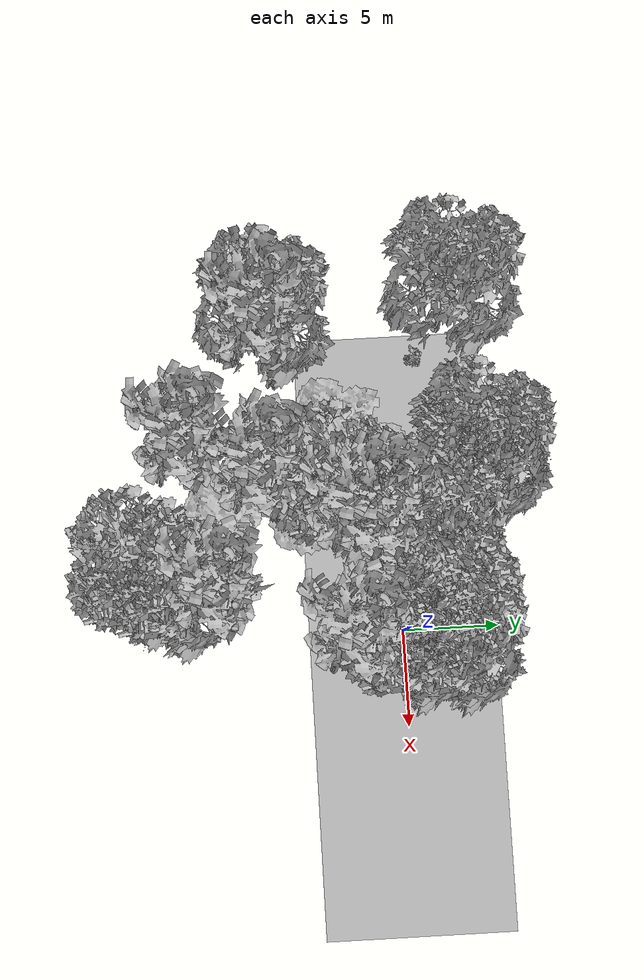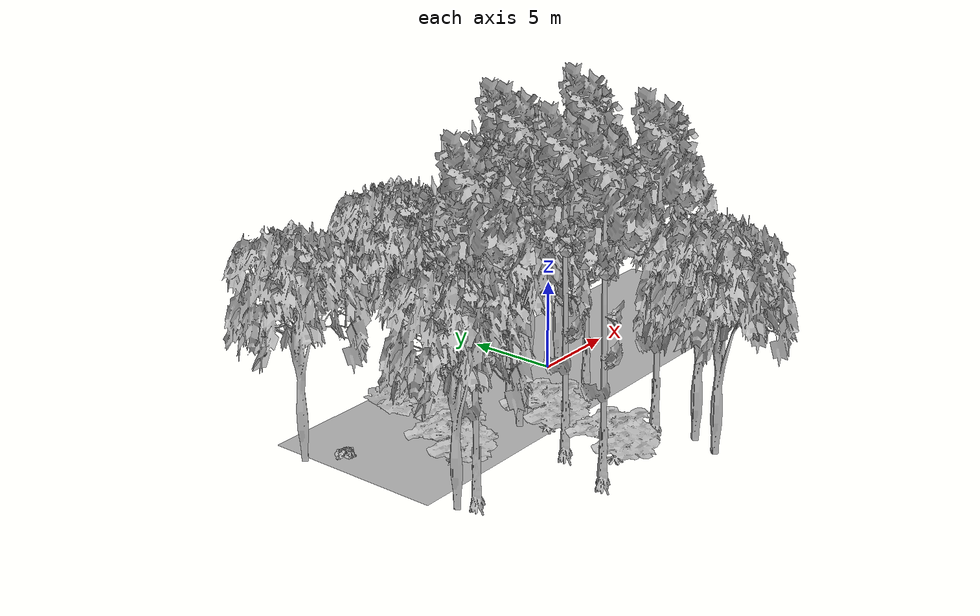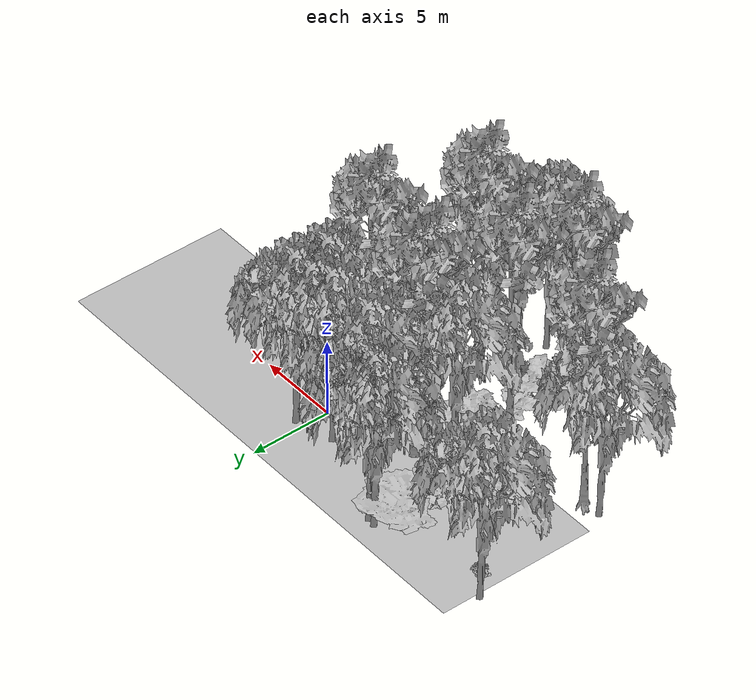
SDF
<sdf version="1.7">
 <world name="default">
  <model name="ground_plane">
   <static>1</static>
   <link name="link">
    <collision name="collision">
     <pose>-50 0 0 0 -0 0</pose>
     <geometry><plane><normal>0 0 1</normal><size>100 100</size></plane></geometry>
     <surface><contact><ode><min_depth>0.01</min_depth><max_vel>0</max_vel></ode></contact></surface>
    </collision>
    <visual name="grass">
     <cast_shadows>0</cast_shadows>
     <geometry>
      <mesh>
       <scale>0.5814285714285714 0.18142857142857144 0.1</scale>
       <uri>file://grass_plane/meshes/grass_plane.dae</uri>
      </mesh>
     </geometry>
    </visual>
   </link>
  </model>
  <model name="Tree 1">
   <static>1</static>
   <pose>-16.062787158504072 2.690668989017393 0 1.57079 -0 0</pose>
   <link name="link">
    <collision name="collision">
     <geometry><mesh><scale>3.5 5 3.5</scale><uri>model://tree_2/meshes/tree_2.obj</uri></mesh></geometry>
    </collision>
    <visual name="visual">
     <geometry><mesh><scale>3.5 5 3.5</scale><uri>model://tree_2/meshes/tree_2.obj</uri></mesh></geometry>
    </visual>
   </link>
  </model>
  <model name="Tree 8">
   <static>1</static>
   <pose>-0.33528790532663777 -2.7939643381200234 0 1.57079 -0 0</pose>
   <link name="link">
    <collision name="collision">
     <geometry><mesh><scale>3.5 5 3.5</scale><uri>model://tree_9/meshes/tree_9.obj</uri></mesh></geometry>
    </collision>
    <visual name="visual">
     <geometry><mesh><scale>3.5 5 3.5</scale><uri>model://tree_9/meshes/tree_9.obj</uri></mesh></geometry>
    </visual>
   </link>
  </model>
  <model name="Tree 14">
   <static>1</static>
   <pose>-2.6202465484503534 -11.016423006931841 0 1.57079 -0 0</pose>
   <link name="link">
    <collision name="collision">
     <geometry><mesh><scale>3.5 5 3.5</scale><uri>model://tree_2/meshes/tree_2.obj</uri></mesh></geometry>
    </collision>
    <visual name="visual">
     <geometry><mesh><scale>3.5 5 3.5</scale><uri>model://tree_2/meshes/tree_2.obj</uri></mesh></geometry>
    </visual>
   </link>
  </model>
  <model name="Tree 16">
   <static>1</static>
   <pose>-8.613029995133267 -9.647444346793051 0 1.57079 -0 0</pose>
   <link name="link">
    <collision name="collision">
     <geometry><mesh><scale>3.5 5 3.5</scale><uri>model://tree_9/meshes/tree_9.obj</uri></mesh></geometry>
    </collision>
    <visual name="visual">
     <geometry><mesh><scale>3.5 5 3.5</scale><uri>model://tree_9/meshes/tree_9.obj</uri></mesh></geometry>
    </visual>
   </link>
  </model>
  <model name="Tree 33">
   <static>1</static>
   <pose>-7.900962774767379 3.4441673641189823 0 1.57079 -0 0</pose>
   <link name="link">
    <collision name="collision">
     <geometry><mesh><scale>3.5 5 3.5</scale><uri>model://tree_2/meshes/tree_2.obj</uri></mesh></geometry>
    </collision>
    <visual name="visual">
     <geometry><mesh><scale>3.5 5 3.5</scale><uri>model://tree_2/meshes/tree_2.obj</uri></mesh></geometry>
    </visual>
   </link>
  </model>
  <model name="Tree 38">
   <static>1</static>
   <pose>-5.0841629788669 1.269926289352366 0 1.57079 -0 0</pose>
   <link name="link">
    <collision name="collision">
     <geometry><mesh><scale>3.5 5 3.5</scale><uri>model://tree_2/meshes/tree_2.obj</uri></mesh></geometry>
    </collision>
    <visual name="visual">
     <geometry><mesh><scale>3.5 5 3.5</scale><uri>model://tree_2/meshes/tree_2.obj</uri></mesh></geometry>
    </visual>
   </link>
  </model>
  <model name="Tree 72">
   <static>1</static>
   <pose>-11.749537027812188 -3.068439686338241 0 1.57079 -0 0</pose>
   <link name="link">
    <collision name="collision">
     <geometry><mesh><scale>4 2.5 4</scale><uri>model://tree_1/meshes/tree_1.obj</uri></mesh></geometry>
    </collision>
    <visual name="visual">
     <geometry><mesh><scale>4 2.5 4</scale><uri>model://tree_1/meshes/tree_1.obj</uri></mesh></geometry>
    </visual>
   </link>
  </model>
  <model name="Tree 75">
   <static>1</static>
   <pose>-6.735600147706634 -3.190339177302686 0 1.57079 -0 0</pose>
   <link name="link">
    <collision name="collision">
     <geometry><mesh><scale>3.5 5 3.5</scale><uri>model://tree_2/meshes/tree_2.obj</uri></mesh></geometry>
    </collision>
    <visual name="visual">
     <geometry><mesh><scale>3.5 5 3.5</scale><uri>model://tree_2/meshes/tree_2.obj</uri></mesh></geometry>
    </visual>
   </link>
  </model>
  <model name="Tree 84">
   <static>1</static>
   <pose>-13.741643183996779 -6.178464813712569 0 1.57079 -0 0</pose>
   <link name="link">
    <collision name="collision">
     <geometry><mesh><scale>3.5 5 3.5</scale><uri>model://tree_9/meshes/tree_9.obj</uri></mesh></geometry>
    </collision>
    <visual name="visual">
     <geometry><mesh><scale>3.5 5 3.5</scale><uri>model://tree_9/meshes/tree_9.obj</uri></mesh></geometry>
    </visual>
   </link>
  </model>
  <model name="Tree 92">
   <static>1</static>
   <pose>-8.412811307482308 3.510228142561534 0 1.57079 -0 0</pose>
   <link name="link">
    <collision name="collision">
     <geometry><mesh><scale>3.5 5 3.5</scale><uri>model://tree_2/meshes/tree_2.obj</uri></mesh></geometry>
    </collision>
    <visual name="visual">
     <geometry><mesh><scale>3.5 5 3.5</scale><uri>model://tree_2/meshes/tree_2.obj</uri></mesh></geometry>
    </visual>
   </link>
  </model>
  <model name="Tree 97">
   <static>1</static>
   <pose>-15.151759450237812 -6.127815725813422 0 1.57079 -0 0</pose>
   <link name="link">
    <collision name="collision">
     <geometry><mesh><scale>3.5 5 3.5</scale><uri>model://tree_2/meshes/tree_2.obj</uri></mesh></geometry>
    </collision>
    <visual name="visual">
     <geometry><mesh><scale>3.5 5 3.5</scale><uri>model://tree_2/meshes/tree_2.obj</uri></mesh></geometry>
    </visual>
   </link>
  </model>
  <model name="Tree 117">
   <static>1</static>
   <pose>-2.4026303379986658 -8.540221117255838 0 1.57079 -0 0</pose>
   <link name="link">
    <collision name="collision">
     <geometry><mesh><scale>3.5 5 3.5</scale><uri>model://tree_9/meshes/tree_9.obj</uri></mesh></geometry>
    </collision>
    <visual name="visual">
     <geometry><mesh><scale>3.5 5 3.5</scale><uri>model://tree_9/meshes/tree_9.obj</uri></mesh></geometry>
    </visual>
   </link>
  </model>
  <model name="Tree 129">
   <static>1</static>
   <pose>-9.191009690459616 0.0568380446524106 0 1.57079 -0 0</pose>
   <link name="link">
    <collision name="collision">
     <geometry><mesh><scale>4 2.5 4</scale><uri>model://tree_1/meshes/tree_1.obj</uri></mesh></geometry>
    </collision>
    <visual name="visual">
     <geometry><mesh><scale>4 2.5 4</scale><uri>model://tree_1/meshes/tree_1.obj</uri></mesh></geometry>
    </visual>
   </link>
  </model>
  <model name="Tree 147">
   <static>1</static>
   <pose>-5.390905873413189 -1.5337069759685775 0 1.57079 -0 0</pose>
   <link name="link">
    <collision name="collision">
     <geometry><mesh><scale>3.5 5 3.5</scale><uri>model://tree_9/meshes/tree_9.obj</uri></mesh></geometry>
    </collision>
    <visual name="visual">
     <geometry><mesh><scale>3.5 5 3.5</scale><uri>model://tree_9/meshes/tree_9.obj</uri></mesh></geometry>
    </visual>
   </link>
  </model>
  <model name="Tree 158">
   <static>1</static>
   <pose>-8.827277123562475 2.2505139795740554 0 1.57079 -0 0</pose>
   <link name="link">
    <collision name="collision">
     <geometry><mesh><scale>3 2 3</scale><uri>model://tree_3/meshes/tree_3.obj</uri></mesh></geometry>
    </collision>
    <visual name="visual">
     <geometry><mesh><scale>3 2 3</scale><uri>model://tree_3/meshes/tree_3.obj</uri></mesh></geometry>
    </visual>
   </link>
  </model>
  <model name="Tree 182">
   <static>1</static>
   <pose>-1.891168990225637 1.0864648960302468 0 1.57079 -0 0</pose>
   <link name="link">
    <collision name="collision">
     <geometry><mesh><scale>3.5 5 3.5</scale><uri>model://tree_2/meshes/tree_2.obj</uri></mesh></geometry>
    </collision>
    <visual name="visual">
     <geometry><mesh><scale>3.5 5 3.5</scale><uri>model://tree_2/meshes/tree_2.obj</uri></mesh></geometry>
    </visual>
   </link>
  </model>
  <model name="Tree 188">
   <static>1</static>
   <pose>-0.8621912315333304 1.615688185936925 0 1.57079 -0 0</pose>
   <link name="link">
    <collision name="collision">
     <geometry><mesh><scale>3.5 5 3.5</scale><uri>model://tree_2/meshes/tree_2.obj</uri></mesh></geometry>
    </collision>
    <visual name="visual">
     <geometry><mesh><scale>3.5 5 3.5</scale><uri>model://tree_2/meshes/tree_2.obj</uri></mesh></geometry>
    </visual>
   </link>
  </model>
  <model name="Tree 202">
   <static>1</static>
   <pose>0.4752452829369389 1.6827323057097026 0 1.57079 -0 0</pose>
   <link name="link">
    <collision name="collision">
     <geometry><mesh><scale>3.5 5 3.5</scale><uri>model://tree_2/meshes/tree_2.obj</uri></mesh></geometry>
    </collision>
    <visual name="visual">
     <geometry><mesh><scale>3.5 5 3.5</scale><uri>model://tree_2/meshes/tree_2.obj</uri></mesh></geometry>
    </visual>
   </link>
  </model>
  <model name="Tree 214">
   <static>1</static>
   <pose>-6.741610926665288 -9.074683102331656 0 1.57079 -0 0</pose>
   <link name="link">
    <collision name="collision">
     <geometry><mesh><scale>4 2.5 4</scale><uri>model://tree_1/meshes/tree_1.obj</uri></mesh></geometry>
    </collision>
    <visual name="visual">
     <geometry><mesh><scale>4 2.5 4</scale><uri>model://tree_1/meshes/tree_1.obj</uri></mesh></geometry>
    </visual>
   </link>
  </model>
  <model name="Tree 219">
   <static>1</static>
   <pose>-5.419136985141833 -2.444529669709789 0 1.57079 -0 0</pose>
   <link name="link">
    <collision name="collision">
     <geometry><mesh><scale>3.5 5 3.5</scale><uri>model://tree_9/meshes/tree_9.obj</uri></mesh></geometry>
    </collision>
    <visual name="visual">
     <geometry><mesh><scale>3.5 5 3.5</scale><uri>model://tree_9/meshes/tree_9.obj</uri></mesh></geometry>
    </visual>
   </link>
  </model>
  <model name="Tree 254">
   <static>1</static>
   <pose>-6.13989467617926 -4.522198128293233 0 1.57079 -0 0</pose>
   <link name="link">
    <collision name="collision">
     <geometry><mesh><scale>4 2.5 4</scale><uri>model://tree_1/meshes/tree_1.obj</uri></mesh></geometry>
    </collision>
    <visual name="visual">
     <geometry><mesh><scale>4 2.5 4</scale><uri>model://tree_1/meshes/tree_1.obj</uri></mesh></geometry>
    </visual>
   </link>
  </model>
  <model name="Tree 257">
   <static>1</static>
   <pose>0.3221052922410337 -0.3784835228885868 0 1.57079 -0 0</pose>
   <link name="link">
    <collision name="collision">
     <geometry><mesh><scale>3.5 5 3.5</scale><uri>model://tree_2/meshes/tree_2.obj</uri></mesh></geometry>
    </collision>
    <visual name="visual">
     <geometry><mesh><scale>3.5 5 3.5</scale><uri>model://tree_2/meshes/tree_2.obj</uri></mesh></geometry>
    </visual>
   </link>
  </model>
  <model name="Tree 275">
   <static>1</static>
   <pose>-7.289533243791212 -6.488748846277964 0 1.57079 -0 0</pose>
   <link name="link">
    <collision name="collision">
     <geometry><mesh><scale>3.5 5 3.5</scale><uri>model://tree_9/meshes/tree_9.obj</uri></mesh></geometry>
    </collision>
    <visual name="visual">
     <geometry><mesh><scale>3.5 5 3.5</scale><uri>model://tree_9/meshes/tree_9.obj</uri></mesh></geometry>
    </visual>
   </link>
  </model>
  <model name="Tree 295">
   <static>1</static>
   <pose>-3.2674893322944527 -12.531789027241071 0 1.57079 -0 0</pose>
   <link name="link">
    <collision name="collision">
     <geometry><mesh><scale>3.5 5 3.5</scale><uri>model://tree_2/meshes/tree_2.obj</uri></mesh></geometry>
    </collision>
    <visual name="visual">
     <geometry><mesh><scale>3.5 5 3.5</scale><uri>model://tree_2/meshes/tree_2.obj</uri></mesh></geometry>
    </visual>
   </link>
  </model>
  <model name="Bush 2">
   <static>1</static>
   <pose>-14.51427150803017 1.4246624195499855 0 1.57079 -0 0</pose>
   <link name="link">
    <collision name="collision">
     <geometry><mesh><scale>2 2 2</scale><uri>model://bush_2/meshes/bush_2.obj</uri></mesh></geometry>
     <surface><contact><collide_without_contact>false</collide_without_contact></contact></surface>
    </collision>
    <visual name="visual">
     <geometry><mesh><scale>2 2 2</scale><uri>model://bush_2/meshes/bush_2.obj</uri></mesh></geometry>
    </visual>
   </link>
  </model>
 </world>
</sdf>
